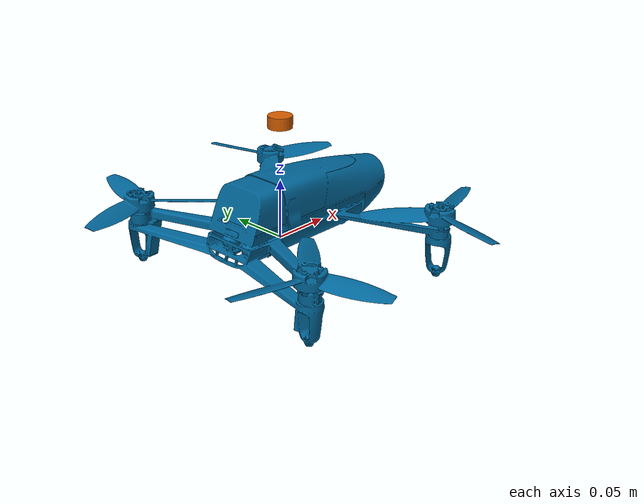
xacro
<?xml version="1.0"?>

<robot xmlns:xacro="http://www.ros.org/wiki/xacro">

  <xacro:property name="pi" value="3.1415926535897931" />
  <xacro:property name="camera_offset_len" value="0.1" />
  <xacro:property name="camera_offset_ver" value="0.0" />
  <!-- +- 35 degrees -->
  <xacro:property name="pan_range" value="0.6108652381980153" />
  <xacro:property name="pan_vel" value="2.0" />
  <!-- +- 35 degrees -->
  <xacro:property name="tilt_range" value="0.6108652381980153" />
  <xacro:property name="tilt_vel" value="2.0" />
  <xacro:property name="joint_effort" value="50" />
  <!-- Main quadrotor link -->
    <link name="base_link">
        <inertial>
        <mass value="0.399" />
        <origin xyz="0 0 0" />
        <inertia ixx="0.01152" ixy="0.0" ixz="0.0" iyy="0.01152" iyz="0.0" izz="0.0218" />
        <!-- Inertia from hector quadrotor, sorry! -->
        </inertial>

        <visual>
        <origin xyz="0 0 0" rpy="0 0 0" />
        <geometry>
            <mesh filename="package://bebop_gazebo/meshes/bebop_model.stl"/>
        </geometry>
        <material name="blue">
            <color rgba="0 0.4 0.6 1"/>
        </material>
        </visual>

        <collision>
        <origin xyz="0 0 0" rpy="0 0 0" />
        <geometry>
            <mesh filename="package://bebop_gazebo/meshes/bebop_model.stl"/>
        </geometry>
        </collision>
    </link>

    <link name="camera_base_link"></link>
    <link name="camera_pan_link"></link>
    <link name="camera_tilt_link"></link>
    <link name="camera_optical"></link>

    <joint name="base_link_joint" type="fixed">
        <origin xyz="${camera_offset_len} 0 ${camera_offset_ver}" rpy="0 0 0" />
        <parent link="base_link"/>
        <child link="camera_base_link" />
    </joint>

    <joint name="camera_pan_joint" type="revolute">
        <origin xyz="0 0 0" rpy="0 0 0" />
        <parent link="camera_base_link" />
        <child link="camera_pan_link" />
        <axis xyz="0 0 1" />
        <limit lower="${-pan_range}" upper="${pan_range}"
        effort="${joint_effort}" velocity="${pan_vel}" />
    </joint>

    <joint name="camera_tilt_joint" type="revolute">
        <origin xyz="0 0 0" rpy="0 0 0" />
        <parent link="camera_pan_link" />
        <child link="camera_tilt_link" />
        <axis xyz="0 1 0" />
        <limit lower="${-tilt_range}" upper="${tilt_range}"
        effort="${joint_effort}" velocity="${tilt_vel}" />
    </joint>

    <joint name="camera_optical_joint" type="fixed">
        <origin xyz="0 0 0" rpy="${-pi/2} 0 ${-pi/2}" />
        <parent link="camera_tilt_link" />
        <child link="camera_optical" />
    </joint>

    <joint name='lidar_joint' type='fixed'>
        <origin xyz="0 0 0.1" rpy="0 0 0" />
        <parent link="base_link"/>
        <child link="lidar_link"/>
        <axis xyz="0 0 0"/>
    </joint>
    <link name='lidar_link'>
        <inertial>
        <mass value="1e-5" />
        <origin xyz="0 0 0" />
        <inertia ixx="1e-6" ixy="0" ixz="0" iyy="1e-6" iyz="0.0" izz="1e-6" />
        </inertial>
        <visual>
        <origin xyz="0 0 0" rpy="0 0 0" />
        <geometry>
            <cylinder radius="0.01" length="0.01"/>
        </geometry>
        </visual>
    </link>

    <gazebo reference="lidar_link">
        <sensor name="laser" type="ray">
            <visualize>true</visualize>
            <always_on>true</always_on>
            <update_rate>10</update_rate>
            <ray>
            <scan>
                <horizontal>
                <samples>360</samples>
                <resolution>1.00000</resolution>
                <min_angle>0.000000</min_angle>
                <max_angle>6.280000</max_angle>
                </horizontal>
            </scan>
            <range>
                <min>0.120000</min>
                <max>1</max>
                <resolution>0.015000</resolution>
            </range>
            </ray>

            <plugin name="laser_controller" filename="libgazebo_ros_ray_sensor.so">
                <output_type>sensor_msgs/LaserScan</output_type>
                <frame_name>lidar_link</frame_name>
            </plugin>
        </sensor>
    </gazebo>

    <gazebo reference="base_link">
        <material>Gazebo/Black</material>
    </gazebo>
</robot>
